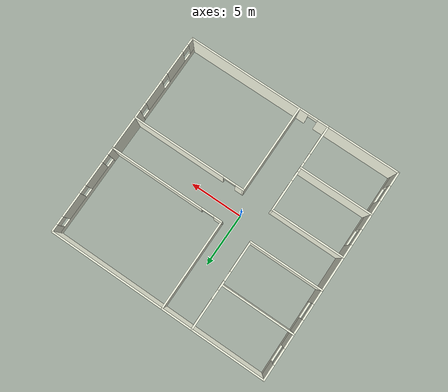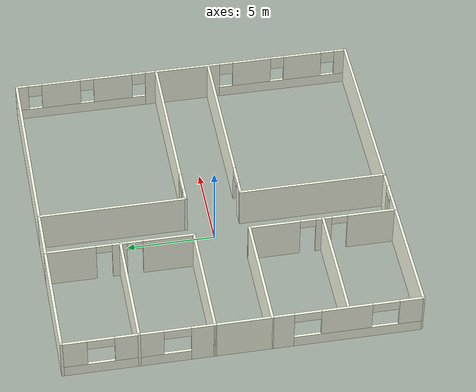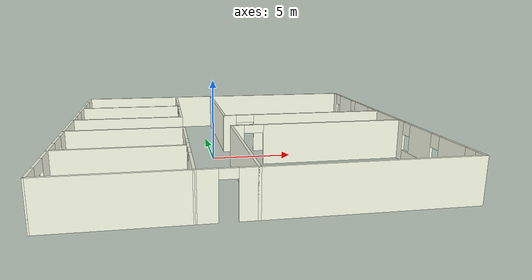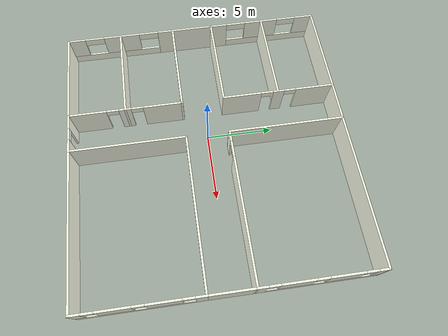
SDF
<?xml version='1.0'?>
<sdf version='1.6'>
  <model name='college'>
    <pose frame=''>1.48726 -0.092953 0 0 -0 0</pose>
    <link name='Wall_14'>
      <collision name='Wall_14_Collision'>
        <geometry>
          <box>
            <size>8.5 0.15 2.5</size>
          </box>
        </geometry>
        <pose frame=''>0 0 1.25 0 -0 0</pose>
      </collision>
      <visual name='Wall_14_Visual'>
        <pose frame=''>0 0 1.25 0 -0 0</pose>
        <geometry>
          <box>
            <size>8.5 0.15 2.5</size>
          </box>
        </geometry>
        <material>
          <script>
            <uri>file://media/materials/scripts/gazebo.material</uri>
            <name>Gazebo/Grey</name>
          </script>
          <ambient>0.988235 1 0.917647 1</ambient>
        </material>
        <meta>
          <layer>0</layer>
        </meta>
      </visual>
      <pose frame=''>-0.569753 5.74556 0 0 -0 1.5708</pose>
    </link>
    <link name='Wall_19'>
      <pose frame=''>-3.42964 5.74918 0 0 -0 1.5708</pose>
      <visual name='Wall_19_Visual_0'>
        <pose frame=''>-2.76957 0 1.25 0 -0 0</pose>
        <geometry>
          <box>
            <size>2.96087 0.15 2.5</size>
          </box>
        </geometry>
        <material>
          <script>
            <uri>file://media/materials/scripts/gazebo.material</uri>
            <name>Gazebo/Grey</name>
          </script>
          <ambient>0.988235 1 0.917647 1</ambient>
        </material>
        <meta>
          <layer>0</layer>
        </meta>
      </visual>
      <collision name='Wall_19_Collision_0'>
        <geometry>
          <box>
            <size>2.96087 0.15 2.5</size>
          </box>
        </geometry>
        <pose frame=''>-2.76957 0 1.25 0 -0 0</pose>
      </collision>
      <visual name='Wall_19_Visual_1'>
        <pose frame=''>0.027105 0 1.25 0 -0 0</pose>
        <geometry>
          <box>
            <size>0.832475 0.15 2.5</size>
          </box>
        </geometry>
        <material>
          <script>
            <uri>file://media/materials/scripts/gazebo.material</uri>
            <name>Gazebo/Grey</name>
          </script>
          <ambient>0.988235 1 0.917647 1</ambient>
        </material>
        <meta>
          <layer>0</layer>
        </meta>
      </visual>
      <collision name='Wall_19_Collision_1'>
        <geometry>
          <box>
            <size>0.832475 0.15 2.5</size>
          </box>
        </geometry>
        <pose frame=''>0.027105 0 1.25 0 -0 0</pose>
      </collision>
      <visual name='Wall_19_Visual_2'>
        <pose frame=''>2.79667 0 1.25 0 -0 0</pose>
        <geometry>
          <box>
            <size>2.90666 0.15 2.5</size>
          </box>
        </geometry>
        <material>
          <script>
            <uri>file://media/materials/scripts/gazebo.material</uri>
            <name>Gazebo/Grey</name>
          </script>
          <ambient>0.988235 1 0.917647 1</ambient>
        </material>
        <meta>
          <layer>0</layer>
        </meta>
      </visual>
      <collision name='Wall_19_Collision_2'>
        <geometry>
          <box>
            <size>2.90666 0.15 2.5</size>
          </box>
        </geometry>
        <pose frame=''>2.79667 0 1.25 0 -0 0</pose>
      </collision>
      <visual name='Wall_19_Visual_3'>
        <pose frame=''>-0.839132 0 2.25 0 -0 0</pose>
        <geometry>
          <box>
            <size>0.9 0.15 0.5</size>
          </box>
        </geometry>
        <material>
          <script>
            <uri>file://media/materials/scripts/gazebo.material</uri>
            <name>Gazebo/Grey</name>
          </script>
          <ambient>0.988235 1 0.917647 1</ambient>
        </material>
        <meta>
          <layer>0</layer>
        </meta>
      </visual>
      <collision name='Wall_19_Collision_3'>
        <geometry>
          <box>
            <size>0.9 0.15 0.5</size>
          </box>
        </geometry>
        <pose frame=''>-0.839132 0 2.25 0 -0 0</pose>
      </collision>
      <visual name='Wall_19_Visual_4'>
        <pose frame=''>0.893342 0 2.25 0 -0 0</pose>
        <geometry>
          <box>
            <size>0.9 0.15 0.5</size>
          </box>
        </geometry>
        <material>
          <script>
            <uri>file://media/materials/scripts/gazebo.material</uri>
            <name>Gazebo/Grey</name>
          </script>
          <ambient>0.988235 1 0.917647 1</ambient>
        </material>
        <meta>
          <layer>0</layer>
        </meta>
      </visual>
      <collision name='Wall_19_Collision_4'>
        <geometry>
          <box>
            <size>0.9 0.15 0.5</size>
          </box>
        </geometry>
        <pose frame=''>0.893342 0 2.25 0 -0 0</pose>
      </collision>
    </link>
    <link name='Wall_21'>
      <pose frame=''>4.85525 1.57056 0 0 -0 0</pose>
      <visual name='Wall_21_Visual_0'>
        <pose frame=''>-5.07887 0 1.25 0 -0 0</pose>
        <geometry>
          <box>
            <size>0.842258 0.15 2.5</size>
          </box>
        </geometry>
        <material>
          <script>
            <uri>file://media/materials/scripts/gazebo.material</uri>
            <name>Gazebo/Grey</name>
          </script>
          <ambient>0.988235 1 0.917647 1</ambient>
        </material>
        <meta>
          <layer>0</layer>
        </meta>
      </visual>
      <collision name='Wall_21_Collision_0'>
        <geometry>
          <box>
            <size>0.842258 0.15 2.5</size>
          </box>
        </geometry>
        <pose frame=''>-5.07887 0 1.25 0 -0 0</pose>
      </collision>
      <visual name='Wall_21_Visual_1'>
        <pose frame=''>1.02113 0 1.25 0 -0 0</pose>
        <geometry>
          <box>
            <size>8.95774 0.15 2.5</size>
          </box>
        </geometry>
        <material>
          <script>
            <uri>file://media/materials/scripts/gazebo.material</uri>
            <name>Gazebo/Grey</name>
          </script>
          <ambient>0.988235 1 0.917647 1</ambient>
        </material>
        <meta>
          <layer>0</layer>
        </meta>
      </visual>
      <collision name='Wall_21_Collision_1'>
        <geometry>
          <box>
            <size>8.95774 0.15 2.5</size>
          </box>
        </geometry>
        <pose frame=''>1.02113 0 1.25 0 -0 0</pose>
      </collision>
      <visual name='Wall_21_Visual_2'>
        <pose frame=''>-4.05774 0 2.25 0 -0 0</pose>
        <geometry>
          <box>
            <size>1.2 0.15 0.5</size>
          </box>
        </geometry>
        <material>
          <script>
            <uri>file://media/materials/scripts/gazebo.material</uri>
            <name>Gazebo/Grey</name>
          </script>
          <ambient>0.988235 1 0.917647 1</ambient>
        </material>
        <meta>
          <layer>0</layer>
        </meta>
      </visual>
      <collision name='Wall_21_Collision_2'>
        <geometry>
          <box>
            <size>1.2 0.15 0.5</size>
          </box>
        </geometry>
        <pose frame=''>-4.05774 0 2.25 0 -0 0</pose>
      </collision>
    </link>
    <link name='Wall_23'>
      <pose frame=''>4.84845 -1.5742 0 0 -0 0</pose>
      <visual name='Wall_23_Visual_0'>
        <pose frame=''>-5.07963 0 1.25 0 -0 0</pose>
        <geometry>
          <box>
            <size>0.84073 0.15 2.5</size>
          </box>
        </geometry>
        <material>
          <script>
            <uri>file://media/materials/scripts/gazebo.material</uri>
            <name>Gazebo/Grey</name>
          </script>
          <ambient>0.988235 1 0.917647 1</ambient>
        </material>
        <meta>
          <layer>0</layer>
        </meta>
      </visual>
      <collision name='Wall_23_Collision_0'>
        <geometry>
          <box>
            <size>0.84073 0.15 2.5</size>
          </box>
        </geometry>
        <pose frame=''>-5.07963 0 1.25 0 -0 0</pose>
      </collision>
      <visual name='Wall_23_Visual_1'>
        <pose frame=''>1.02036 0 1.25 0 -0 0</pose>
        <geometry>
          <box>
            <size>8.95927 0.15 2.5</size>
          </box>
        </geometry>
        <material>
          <script>
            <uri>file://media/materials/scripts/gazebo.material</uri>
            <name>Gazebo/Grey</name>
          </script>
          <ambient>0.988235 1 0.917647 1</ambient>
        </material>
        <meta>
          <layer>0</layer>
        </meta>
      </visual>
      <collision name='Wall_23_Collision_1'>
        <geometry>
          <box>
            <size>8.95927 0.15 2.5</size>
          </box>
        </geometry>
        <pose frame=''>1.02036 0 1.25 0 -0 0</pose>
      </collision>
      <visual name='Wall_23_Visual_2'>
        <pose frame=''>-4.05927 0 2.25 0 -0 0</pose>
        <geometry>
          <box>
            <size>1.2 0.15 0.5</size>
          </box>
        </geometry>
        <material>
          <script>
            <uri>file://media/materials/scripts/gazebo.material</uri>
            <name>Gazebo/Grey</name>
          </script>
          <ambient>0.988235 1 0.917647 1</ambient>
        </material>
        <meta>
          <layer>0</layer>
        </meta>
      </visual>
      <collision name='Wall_23_Collision_2'>
        <geometry>
          <box>
            <size>1.2 0.15 0.5</size>
          </box>
        </geometry>
        <pose frame=''>-4.05927 0 2.25 0 -0 0</pose>
      </collision>
    </link>
    <link name='Wall_24'>
      <pose frame=''>10.2735 -5.7492 0 0 0 -1.5708</pose>
      <visual name='Wall_24_Visual_0'>
        <pose frame=''>-3.87076 0 1.25 0 -0 0</pose>
        <geometry>
          <box>
            <size>0.758485 0.15 2.5</size>
          </box>
        </geometry>
        <material>
          <script>
            <uri>file://media/materials/scripts/gazebo.material</uri>
            <name>Gazebo/Grey</name>
          </script>
          <ambient>0.988235 1 0.917647 1</ambient>
        </material>
        <meta>
          <layer>0</layer>
        </meta>
      </visual>
      <collision name='Wall_24_Collision_0'>
        <geometry>
          <box>
            <size>0.758485 0.15 2.5</size>
          </box>
        </geometry>
        <pose frame=''>-3.87076 0 1.25 0 -0 0</pose>
      </collision>
      <visual name='Wall_24_Visual_1'>
        <pose frame=''>0.379243 0 0.35 0 -0 0</pose>
        <geometry>
          <box>
            <size>7.74151 0.15 0.7</size>
          </box>
        </geometry>
        <material>
          <script>
            <uri>file://media/materials/scripts/gazebo.material</uri>
            <name>Gazebo/Grey</name>
          </script>
          <ambient>0.988235 1 0.917647 1</ambient>
        </material>
        <meta>
          <layer>0</layer>
        </meta>
      </visual>
      <collision name='Wall_24_Collision_1'>
        <geometry>
          <box>
            <size>7.74151 0.15 0.7</size>
          </box>
        </geometry>
        <pose frame=''>0.379243 0 0.35 0 -0 0</pose>
      </collision>
      <visual name='Wall_24_Visual_2'>
        <pose frame=''>-1.5349 0 1.6 0 -0 0</pose>
        <geometry>
          <box>
            <size>2.31323 0.15 1.8</size>
          </box>
        </geometry>
        <material>
          <script>
            <uri>file://media/materials/scripts/gazebo.material</uri>
            <name>Gazebo/Grey</name>
          </script>
          <ambient>0.988235 1 0.917647 1</ambient>
        </material>
        <meta>
          <layer>0</layer>
        </meta>
      </visual>
      <collision name='Wall_24_Collision_2'>
        <geometry>
          <box>
            <size>2.31323 0.15 1.8</size>
          </box>
        </geometry>
        <pose frame=''>-1.5349 0 1.6 0 -0 0</pose>
      </collision>
      <visual name='Wall_24_Visual_3'>
        <pose frame=''>1.56248 0 1.6 0 -0 0</pose>
        <geometry>
          <box>
            <size>2.28153 0.15 1.8</size>
          </box>
        </geometry>
        <material>
          <script>
            <uri>file://media/materials/scripts/gazebo.material</uri>
            <name>Gazebo/Grey</name>
          </script>
          <ambient>0.988235 1 0.917647 1</ambient>
        </material>
        <meta>
          <layer>0</layer>
        </meta>
      </visual>
      <collision name='Wall_24_Collision_3'>
        <geometry>
          <box>
            <size>2.28153 0.15 1.8</size>
          </box>
        </geometry>
        <pose frame=''>1.56248 0 1.6 0 -0 0</pose>
      </collision>
      <visual name='Wall_24_Visual_4'>
        <pose frame=''>3.87662 0 1.6 0 -0 0</pose>
        <geometry>
          <box>
            <size>0.746754 0.15 1.8</size>
          </box>
        </geometry>
        <material>
          <script>
            <uri>file://media/materials/scripts/gazebo.material</uri>
            <name>Gazebo/Grey</name>
          </script>
          <ambient>0.988235 1 0.917647 1</ambient>
        </material>
        <meta>
          <layer>0</layer>
        </meta>
      </visual>
      <collision name='Wall_24_Collision_4'>
        <geometry>
          <box>
            <size>0.746754 0.15 1.8</size>
          </box>
        </geometry>
        <pose frame=''>3.87662 0 1.6 0 -0 0</pose>
      </collision>
      <visual name='Wall_24_Visual_5'>
        <pose frame=''>-3.09151 0 2.1 0 -0 0</pose>
        <geometry>
          <box>
            <size>0.8 0.15 0.8</size>
          </box>
        </geometry>
        <material>
          <script>
            <uri>file://media/materials/scripts/gazebo.material</uri>
            <name>Gazebo/Grey</name>
          </script>
          <ambient>0.988235 1 0.917647 1</ambient>
        </material>
        <meta>
          <layer>0</layer>
        </meta>
      </visual>
      <collision name='Wall_24_Collision_5'>
        <geometry>
          <box>
            <size>0.8 0.15 0.8</size>
          </box>
        </geometry>
        <pose frame=''>-3.09151 0 2.1 0 -0 0</pose>
      </collision>
      <visual name='Wall_24_Visual_6'>
        <pose frame=''>0.021717 0 2.1 0 -0 0</pose>
        <geometry>
          <box>
            <size>0.8 0.15 0.8</size>
          </box>
        </geometry>
        <material>
          <script>
            <uri>file://media/materials/scripts/gazebo.material</uri>
            <name>Gazebo/Grey</name>
          </script>
          <ambient>0.988235 1 0.917647 1</ambient>
        </material>
        <meta>
          <layer>0</layer>
        </meta>
      </visual>
      <collision name='Wall_24_Collision_6'>
        <geometry>
          <box>
            <size>0.8 0.15 0.8</size>
          </box>
        </geometry>
        <pose frame=''>0.021717 0 2.1 0 -0 0</pose>
      </collision>
      <visual name='Wall_24_Visual_7'>
        <pose frame=''>3.10325 0 2.1 0 -0 0</pose>
        <geometry>
          <box>
            <size>0.8 0.15 0.8</size>
          </box>
        </geometry>
        <material>
          <script>
            <uri>file://media/materials/scripts/gazebo.material</uri>
            <name>Gazebo/Grey</name>
          </script>
          <ambient>0.988235 1 0.917647 1</ambient>
        </material>
        <meta>
          <layer>0</layer>
        </meta>
      </visual>
      <collision name='Wall_24_Collision_7'>
        <geometry>
          <box>
            <size>0.8 0.15 0.8</size>
          </box>
        </geometry>
        <pose frame=''>3.10325 0 2.1 0 -0 0</pose>
      </collision>
    </link>
    <link name='Wall_25'>
      <collision name='Wall_25_Collision'>
        <geometry>
          <box>
            <size>11 0.15 2.5</size>
          </box>
        </geometry>
        <pose frame=''>0 0 1.25 0 -0 0</pose>
      </collision>
      <visual name='Wall_25_Visual'>
        <pose frame=''>0 0 1.25 0 -0 0</pose>
        <geometry>
          <box>
            <size>11 0.15 2.5</size>
          </box>
        </geometry>
        <material>
          <script>
            <uri>file://media/materials/scripts/gazebo.material</uri>
            <name>Gazebo/Grey</name>
          </script>
          <ambient>0.988235 1 0.917647 1</ambient>
        </material>
        <meta>
          <layer>0</layer>
        </meta>
      </visual>
      <pose frame=''>4.84845 -9.9242 0 0 -0 3.14159</pose>
    </link>
    <link name='Wall_27'>
      <pose frame=''>10.2802 5.74556 0 0 -0 1.5708</pose>
      <visual name='Wall_27_Visual_0'>
        <pose frame=''>-3.87825 0 1.25 0 -0 0</pose>
        <geometry>
          <box>
            <size>0.743501 0.15 2.5</size>
          </box>
        </geometry>
        <material>
          <script>
            <uri>file://media/materials/scripts/gazebo.material</uri>
            <name>Gazebo/Grey</name>
          </script>
          <ambient>0.988235 1 0.917647 1</ambient>
        </material>
        <meta>
          <layer>0</layer>
        </meta>
      </visual>
      <collision name='Wall_27_Collision_0'>
        <geometry>
          <box>
            <size>0.743501 0.15 2.5</size>
          </box>
        </geometry>
        <pose frame=''>-3.87825 0 1.25 0 -0 0</pose>
      </collision>
      <visual name='Wall_27_Visual_1'>
        <pose frame=''>0.37175 0 0.35 0 -0 0</pose>
        <geometry>
          <box>
            <size>7.7565 0.15 0.7</size>
          </box>
        </geometry>
        <material>
          <script>
            <uri>file://media/materials/scripts/gazebo.material</uri>
            <name>Gazebo/Grey</name>
          </script>
          <ambient>0.988235 1 0.917647 1</ambient>
        </material>
        <meta>
          <layer>0</layer>
        </meta>
      </visual>
      <collision name='Wall_27_Collision_1'>
        <geometry>
          <box>
            <size>7.7565 0.15 0.7</size>
          </box>
        </geometry>
        <pose frame=''>0.37175 0 0.35 0 -0 0</pose>
      </collision>
      <visual name='Wall_27_Visual_2'>
        <pose frame=''>-1.55549 0 1.6 0 -0 0</pose>
        <geometry>
          <box>
            <size>2.30202 0.15 1.8</size>
          </box>
        </geometry>
        <material>
          <script>
            <uri>file://media/materials/scripts/gazebo.material</uri>
            <name>Gazebo/Grey</name>
          </script>
          <ambient>0.988235 1 0.917647 1</ambient>
        </material>
        <meta>
          <layer>0</layer>
        </meta>
      </visual>
      <collision name='Wall_27_Collision_2'>
        <geometry>
          <box>
            <size>2.30202 0.15 1.8</size>
          </box>
        </geometry>
        <pose frame=''>-1.55549 0 1.6 0 -0 0</pose>
      </collision>
      <visual name='Wall_27_Visual_3'>
        <pose frame=''>1.54849 0 1.6 0 -0 0</pose>
        <geometry>
          <box>
            <size>2.30593 0.15 1.8</size>
          </box>
        </geometry>
        <material>
          <script>
            <uri>file://media/materials/scripts/gazebo.material</uri>
            <name>Gazebo/Grey</name>
          </script>
          <ambient>0.988235 1 0.917647 1</ambient>
        </material>
        <meta>
          <layer>0</layer>
        </meta>
      </visual>
      <collision name='Wall_27_Collision_3'>
        <geometry>
          <box>
            <size>2.30593 0.15 1.8</size>
          </box>
        </geometry>
        <pose frame=''>1.54849 0 1.6 0 -0 0</pose>
      </collision>
      <visual name='Wall_27_Visual_4'>
        <pose frame=''>3.87573 0 1.6 0 -0 0</pose>
        <geometry>
          <box>
            <size>0.74855 0.15 1.8</size>
          </box>
        </geometry>
        <material>
          <script>
            <uri>file://media/materials/scripts/gazebo.material</uri>
            <name>Gazebo/Grey</name>
          </script>
          <ambient>0.988235 1 0.917647 1</ambient>
        </material>
        <meta>
          <layer>0</layer>
        </meta>
      </visual>
      <collision name='Wall_27_Collision_4'>
        <geometry>
          <box>
            <size>0.74855 0.15 1.8</size>
          </box>
        </geometry>
        <pose frame=''>3.87573 0 1.6 0 -0 0</pose>
      </collision>
      <visual name='Wall_27_Visual_5'>
        <pose frame=''>-3.1065 0 2.1 0 -0 0</pose>
        <geometry>
          <box>
            <size>0.8 0.15 0.8</size>
          </box>
        </geometry>
        <material>
          <script>
            <uri>file://media/materials/scripts/gazebo.material</uri>
            <name>Gazebo/Grey</name>
          </script>
          <ambient>0.988235 1 0.917647 1</ambient>
        </material>
        <meta>
          <layer>0</layer>
        </meta>
      </visual>
      <collision name='Wall_27_Collision_5'>
        <geometry>
          <box>
            <size>0.8 0.15 0.8</size>
          </box>
        </geometry>
        <pose frame=''>-3.1065 0 2.1 0 -0 0</pose>
      </collision>
      <visual name='Wall_27_Visual_6'>
        <pose frame=''>-0.004479 0 2.1 0 -0 0</pose>
        <geometry>
          <box>
            <size>0.8 0.15 0.8</size>
          </box>
        </geometry>
        <material>
          <script>
            <uri>file://media/materials/scripts/gazebo.material</uri>
            <name>Gazebo/Grey</name>
          </script>
          <ambient>0.988235 1 0.917647 1</ambient>
        </material>
        <meta>
          <layer>0</layer>
        </meta>
      </visual>
      <collision name='Wall_27_Collision_6'>
        <geometry>
          <box>
            <size>0.8 0.15 0.8</size>
          </box>
        </geometry>
        <pose frame=''>-0.004479 0 2.1 0 -0 0</pose>
      </collision>
      <visual name='Wall_27_Visual_7'>
        <pose frame=''>3.10145 0 2.1 0 -0 0</pose>
        <geometry>
          <box>
            <size>0.8 0.15 0.8</size>
          </box>
        </geometry>
        <material>
          <script>
            <uri>file://media/materials/scripts/gazebo.material</uri>
            <name>Gazebo/Grey</name>
          </script>
          <ambient>0.988235 1 0.917647 1</ambient>
        </material>
        <meta>
          <layer>0</layer>
        </meta>
      </visual>
      <collision name='Wall_27_Collision_7'>
        <geometry>
          <box>
            <size>0.8 0.15 0.8</size>
          </box>
        </geometry>
        <pose frame=''>3.10145 0 2.1 0 -0 0</pose>
      </collision>
    </link>
    <link name='Wall_28'>
      <collision name='Wall_28_Collision'>
        <geometry>
          <box>
            <size>11 0.15 2.5</size>
          </box>
        </geometry>
        <pose frame=''>0 0 1.25 0 -0 0</pose>
      </collision>
      <visual name='Wall_28_Visual'>
        <pose frame=''>0 0 1.25 0 -0 0</pose>
        <geometry>
          <box>
            <size>11 0.15 2.5</size>
          </box>
        </geometry>
        <material>
          <script>
            <uri>file://media/materials/scripts/gazebo.material</uri>
            <name>Gazebo/Grey</name>
          </script>
          <ambient>0.988235 1 0.917647 1</ambient>
        </material>
        <meta>
          <layer>0</layer>
        </meta>
      </visual>
      <pose frame=''>4.85525 9.92056 0 0 -0 3.14159</pose>
    </link>
    <link name='Wall_32'>
      <pose frame=''>-10.2765 -5.74165 0 0 0 -1.5708</pose>
      <visual name='Wall_32_Visual_0'>
        <pose frame=''>-3.60322 0 1.25 0 -0 0</pose>
        <geometry>
          <box>
            <size>1.29356 0.15 2.5</size>
          </box>
        </geometry>
        <material>
          <script>
            <uri>file://media/materials/scripts/gazebo.material</uri>
            <name>Gazebo/Grey</name>
          </script>
          <ambient>0.988235 1 0.917647 1</ambient>
        </material>
        <meta>
          <layer>0</layer>
        </meta>
      </visual>
      <collision name='Wall_32_Collision_0'>
        <geometry>
          <box>
            <size>1.29356 0.15 2.5</size>
          </box>
        </geometry>
        <pose frame=''>-3.60322 0 1.25 0 -0 0</pose>
      </collision>
      <visual name='Wall_32_Visual_1'>
        <pose frame=''>0.64678 0 0.35 0 -0 0</pose>
        <geometry>
          <box>
            <size>7.20644 0.15 0.7</size>
          </box>
        </geometry>
        <material>
          <script>
            <uri>file://media/materials/scripts/gazebo.material</uri>
            <name>Gazebo/Grey</name>
          </script>
          <ambient>0.988235 1 0.917647 1</ambient>
        </material>
        <meta>
          <layer>0</layer>
        </meta>
      </visual>
      <collision name='Wall_32_Collision_1'>
        <geometry>
          <box>
            <size>7.20644 0.15 0.7</size>
          </box>
        </geometry>
        <pose frame=''>0.64678 0 0.35 0 -0 0</pose>
      </collision>
      <visual name='Wall_32_Visual_2'>
        <pose frame=''>-0.045598 0 1.6 0 -0 0</pose>
        <geometry>
          <box>
            <size>2.82168 0.15 1.8</size>
          </box>
        </geometry>
        <material>
          <script>
            <uri>file://media/materials/scripts/gazebo.material</uri>
            <name>Gazebo/Grey</name>
          </script>
          <ambient>0.988235 1 0.917647 1</ambient>
        </material>
        <meta>
          <layer>0</layer>
        </meta>
      </visual>
      <collision name='Wall_32_Collision_2'>
        <geometry>
          <box>
            <size>2.82168 0.15 1.8</size>
          </box>
        </geometry>
        <pose frame=''>-0.045598 0 1.6 0 -0 0</pose>
      </collision>
      <visual name='Wall_32_Visual_3'>
        <pose frame=''>3.55762 0 1.6 0 -0 0</pose>
        <geometry>
          <box>
            <size>1.38476 0.15 1.8</size>
          </box>
        </geometry>
        <material>
          <script>
            <uri>file://media/materials/scripts/gazebo.material</uri>
            <name>Gazebo/Grey</name>
          </script>
          <ambient>0.988235 1 0.917647 1</ambient>
        </material>
        <meta>
          <layer>0</layer>
        </meta>
      </visual>
      <collision name='Wall_32_Collision_3'>
        <geometry>
          <box>
            <size>1.38476 0.15 1.8</size>
          </box>
        </geometry>
        <pose frame=''>3.55762 0 1.6 0 -0 0</pose>
      </collision>
      <visual name='Wall_32_Visual_4'>
        <pose frame=''>-2.20644 0 2.2 0 -0 0</pose>
        <geometry>
          <box>
            <size>1.5 0.15 0.6</size>
          </box>
        </geometry>
        <material>
          <script>
            <uri>file://media/materials/scripts/gazebo.material</uri>
            <name>Gazebo/Grey</name>
          </script>
          <ambient>0.988235 1 0.917647 1</ambient>
        </material>
        <meta>
          <layer>0</layer>
        </meta>
      </visual>
      <collision name='Wall_32_Collision_4'>
        <geometry>
          <box>
            <size>1.5 0.15 0.6</size>
          </box>
        </geometry>
        <pose frame=''>-2.20644 0 2.2 0 -0 0</pose>
      </collision>
      <visual name='Wall_32_Visual_5'>
        <pose frame=''>2.11524 0 2.2 0 -0 0</pose>
        <geometry>
          <box>
            <size>1.5 0.15 0.6</size>
          </box>
        </geometry>
        <material>
          <script>
            <uri>file://media/materials/scripts/gazebo.material</uri>
            <name>Gazebo/Grey</name>
          </script>
          <ambient>0.988235 1 0.917647 1</ambient>
        </material>
        <meta>
          <layer>0</layer>
        </meta>
      </visual>
      <collision name='Wall_32_Collision_5'>
        <geometry>
          <box>
            <size>1.5 0.15 0.6</size>
          </box>
        </geometry>
        <pose frame=''>2.11524 0 2.2 0 -0 0</pose>
      </collision>
    </link>
    <link name='Wall_40'>
      <collision name='Wall_40_Collision'>
        <geometry>
          <box>
            <size>7 0.15 2.5</size>
          </box>
        </geometry>
        <pose frame=''>0 0 1.25 0 -0 0</pose>
      </collision>
      <visual name='Wall_40_Visual'>
        <pose frame=''>0 0 1.25 0 -0 0</pose>
        <geometry>
          <box>
            <size>7 0.15 2.5</size>
          </box>
        </geometry>
        <material>
          <script>
            <uri>file://media/materials/scripts/gazebo.material</uri>
            <name>Gazebo/Grey</name>
          </script>
          <ambient>0.988235 1 0.917647 1</ambient>
        </material>
        <meta>
          <layer>0</layer>
        </meta>
      </visual>
      <pose frame=''>-6.84998 -5.77055 0 0 -0 3.14159</pose>
    </link>
    <link name='Wall_42'>
      <collision name='Wall_42_Collision'>
        <geometry>
          <box>
            <size>7 0.15 2.5</size>
          </box>
        </geometry>
        <pose frame=''>0 0 1.25 0 -0 0</pose>
      </collision>
      <visual name='Wall_42_Visual'>
        <pose frame=''>0 0 1.25 0 -0 0</pose>
        <geometry>
          <box>
            <size>7 0.15 2.5</size>
          </box>
        </geometry>
        <material>
          <script>
            <uri>file://media/materials/scripts/gazebo.material</uri>
            <name>Gazebo/Grey</name>
          </script>
          <ambient>0.988235 1 0.917647 1</ambient>
        </material>
        <meta>
          <layer>0</layer>
        </meta>
      </visual>
      <pose frame=''>-6.85464 1.57418 0 0 -0 3.14159</pose>
    </link>
    <link name='Wall_43'>
      <pose frame=''>-10.2796 5.74918 0 0 -0 1.5708</pose>
      <visual name='Wall_43_Visual_0'>
        <pose frame=''>-3.56529 0 1.25 0 -0 0</pose>
        <geometry>
          <box>
            <size>1.36942 0.15 2.5</size>
          </box>
        </geometry>
        <material>
          <script>
            <uri>file://media/materials/scripts/gazebo.material</uri>
            <name>Gazebo/Grey</name>
          </script>
          <ambient>0.988235 1 0.917647 1</ambient>
        </material>
        <meta>
          <layer>0</layer>
        </meta>
      </visual>
      <collision name='Wall_43_Collision_0'>
        <geometry>
          <box>
            <size>1.36942 0.15 2.5</size>
          </box>
        </geometry>
        <pose frame=''>-3.56529 0 1.25 0 -0 0</pose>
      </collision>
      <visual name='Wall_43_Visual_1'>
        <pose frame=''>0.684711 0 0.35 0 -0 0</pose>
        <geometry>
          <box>
            <size>7.13058 0.15 0.7</size>
          </box>
        </geometry>
        <material>
          <script>
            <uri>file://media/materials/scripts/gazebo.material</uri>
            <name>Gazebo/Grey</name>
          </script>
          <ambient>0.988235 1 0.917647 1</ambient>
        </material>
        <meta>
          <layer>0</layer>
        </meta>
      </visual>
      <collision name='Wall_43_Collision_1'>
        <geometry>
          <box>
            <size>7.13058 0.15 0.7</size>
          </box>
        </geometry>
        <pose frame=''>0.684711 0 0.35 0 -0 0</pose>
      </collision>
      <visual name='Wall_43_Visual_2'>
        <pose frame=''>-0.04698 0 1.6 0 -0 0</pose>
        <geometry>
          <box>
            <size>2.6672 0.15 1.8</size>
          </box>
        </geometry>
        <material>
          <script>
            <uri>file://media/materials/scripts/gazebo.material</uri>
            <name>Gazebo/Grey</name>
          </script>
          <ambient>0.988235 1 0.917647 1</ambient>
        </material>
        <meta>
          <layer>0</layer>
        </meta>
      </visual>
      <collision name='Wall_43_Collision_2'>
        <geometry>
          <box>
            <size>2.6672 0.15 1.8</size>
          </box>
        </geometry>
        <pose frame=''>-0.04698 0 1.6 0 -0 0</pose>
      </collision>
      <visual name='Wall_43_Visual_3'>
        <pose frame=''>3.51831 0 1.6 0 -0 0</pose>
        <geometry>
          <box>
            <size>1.46338 0.15 1.8</size>
          </box>
        </geometry>
        <material>
          <script>
            <uri>file://media/materials/scripts/gazebo.material</uri>
            <name>Gazebo/Grey</name>
          </script>
          <ambient>0.988235 1 0.917647 1</ambient>
        </material>
        <meta>
          <layer>0</layer>
        </meta>
      </visual>
      <collision name='Wall_43_Collision_3'>
        <geometry>
          <box>
            <size>1.46338 0.15 1.8</size>
          </box>
        </geometry>
        <pose frame=''>3.51831 0 1.6 0 -0 0</pose>
      </collision>
      <visual name='Wall_43_Visual_4'>
        <pose frame=''>-2.13058 0 2.2 0 -0 0</pose>
        <geometry>
          <box>
            <size>1.5 0.15 0.6</size>
          </box>
        </geometry>
        <material>
          <script>
            <uri>file://media/materials/scripts/gazebo.material</uri>
            <name>Gazebo/Grey</name>
          </script>
          <ambient>0.988235 1 0.917647 1</ambient>
        </material>
        <meta>
          <layer>0</layer>
        </meta>
      </visual>
      <collision name='Wall_43_Collision_4'>
        <geometry>
          <box>
            <size>1.5 0.15 0.6</size>
          </box>
        </geometry>
        <pose frame=''>-2.13058 0 2.2 0 -0 0</pose>
      </collision>
      <visual name='Wall_43_Visual_5'>
        <pose frame=''>2.03662 0 2.2 0 -0 0</pose>
        <geometry>
          <box>
            <size>1.5 0.15 0.6</size>
          </box>
        </geometry>
        <material>
          <script>
            <uri>file://media/materials/scripts/gazebo.material</uri>
            <name>Gazebo/Grey</name>
          </script>
          <ambient>0.988235 1 0.917647 1</ambient>
        </material>
        <meta>
          <layer>0</layer>
        </meta>
      </visual>
      <collision name='Wall_43_Collision_5'>
        <geometry>
          <box>
            <size>1.5 0.15 0.6</size>
          </box>
        </geometry>
        <pose frame=''>2.03662 0 2.2 0 -0 0</pose>
      </collision>
    </link>
    <link name='Wall_45'>
      <collision name='Wall_45_Collision'>
        <geometry>
          <box>
            <size>7 0.15 2.5</size>
          </box>
        </geometry>
        <pose frame=''>0 0 1.25 0 -0 0</pose>
      </collision>
      <visual name='Wall_45_Visual'>
        <pose frame=''>0 0 1.25 0 -0 0</pose>
        <geometry>
          <box>
            <size>7 0.15 2.5</size>
          </box>
        </geometry>
        <material>
          <script>
            <uri>file://media/materials/scripts/gazebo.material</uri>
            <name>Gazebo/Grey</name>
          </script>
          <ambient>0.988235 1 0.917647 1</ambient>
        </material>
        <meta>
          <layer>0</layer>
        </meta>
      </visual>
      <pose frame=''>-6.85464 9.92418 0 0 -0 0</pose>
    </link>
    <link name='Wall_48'>
      <collision name='Wall_48_Collision'>
        <geometry>
          <box>
            <size>7 0.15 2.5</size>
          </box>
        </geometry>
        <pose frame=''>0 0 1.25 0 -0 0</pose>
      </collision>
      <visual name='Wall_48_Visual'>
        <pose frame=''>0 0 1.25 0 -0 0</pose>
        <geometry>
          <box>
            <size>7 0.15 2.5</size>
          </box>
        </geometry>
        <material>
          <script>
            <uri>file://media/materials/scripts/gazebo.material</uri>
            <name>Gazebo/Grey</name>
          </script>
          <ambient>0.988235 1 0.917647 1</ambient>
        </material>
        <meta>
          <layer>0</layer>
        </meta>
      </visual>
      <pose frame=''>-6.85154 -9.92042 0 0 0 -0.001102</pose>
    </link>
    <link name='Wall_50'>
      <collision name='Wall_50_Collision'>
        <geometry>
          <box>
            <size>7.00001 0.15 2.5</size>
          </box>
        </geometry>
        <pose frame=''>0 0 1.25 0 -0 0</pose>
      </collision>
      <visual name='Wall_50_Visual'>
        <pose frame=''>0 0 1.25 0 -0 0</pose>
        <geometry>
          <box>
            <size>7.00001 0.15 2.5</size>
          </box>
        </geometry>
        <material>
          <script>
            <uri>file://media/materials/scripts/gazebo.material</uri>
            <name>Gazebo/Grey</name>
          </script>
          <ambient>0.988235 1 0.917647 1</ambient>
        </material>
        <meta>
          <layer>0</layer>
        </meta>
      </visual>
      <pose frame=''>-6.85154 -1.56665 0 0 -0 0</pose>
    </link>
    <link name='Wall_6'>
      <pose frame=''>-3.42655 -5.74045 0 0 -0 1.5708</pose>
      <visual name='Wall_6_Visual_0'>
        <pose frame=''>-2.83912 0 1.25 0 -0 0</pose>
        <geometry>
          <box>
            <size>2.83925 0.15 2.5</size>
          </box>
        </geometry>
        <material>
          <script>
            <uri>file://media/materials/scripts/gazebo.material</uri>
            <name>Gazebo/Grey</name>
          </script>
          <ambient>0.988235 1 0.917647 1</ambient>
        </material>
        <meta>
          <layer>0</layer>
        </meta>
      </visual>
      <collision name='Wall_6_Collision_0'>
        <geometry>
          <box>
            <size>2.83925 0.15 2.5</size>
          </box>
        </geometry>
        <pose frame=''>-2.83912 0 1.25 0 -0 0</pose>
      </collision>
      <visual name='Wall_6_Visual_1'>
        <pose frame=''>-0.069089 0 1.25 0 -0 0</pose>
        <geometry>
          <box>
            <size>0.900821 0.15 2.5</size>
          </box>
        </geometry>
        <material>
          <script>
            <uri>file://media/materials/scripts/gazebo.material</uri>
            <name>Gazebo/Grey</name>
          </script>
          <ambient>0.988235 1 0.917647 1</ambient>
        </material>
        <meta>
          <layer>0</layer>
        </meta>
      </visual>
      <collision name='Wall_6_Collision_1'>
        <geometry>
          <box>
            <size>0.900821 0.15 2.5</size>
          </box>
        </geometry>
        <pose frame=''>-0.069089 0 1.25 0 -0 0</pose>
      </collision>
      <visual name='Wall_6_Visual_2'>
        <pose frame=''>2.77003 0 1.25 0 -0 0</pose>
        <geometry>
          <box>
            <size>2.97742 0.15 2.5</size>
          </box>
        </geometry>
        <material>
          <script>
            <uri>file://media/materials/scripts/gazebo.material</uri>
            <name>Gazebo/Grey</name>
          </script>
          <ambient>0.988235 1 0.917647 1</ambient>
        </material>
        <meta>
          <layer>0</layer>
        </meta>
      </visual>
      <collision name='Wall_6_Collision_2'>
        <geometry>
          <box>
            <size>2.97742 0.15 2.5</size>
          </box>
        </geometry>
        <pose frame=''>2.77003 0 1.25 0 -0 0</pose>
      </collision>
      <visual name='Wall_6_Visual_3'>
        <pose frame=''>-0.9695 0 2.25 0 -0 0</pose>
        <geometry>
          <box>
            <size>0.9 0.15 0.5</size>
          </box>
        </geometry>
        <material>
          <script>
            <uri>file://media/materials/scripts/gazebo.material</uri>
            <name>Gazebo/Grey</name>
          </script>
          <ambient>0.988235 1 0.917647 1</ambient>
        </material>
        <meta>
          <layer>0</layer>
        </meta>
      </visual>
      <collision name='Wall_6_Collision_3'>
        <geometry>
          <box>
            <size>0.9 0.15 0.5</size>
          </box>
        </geometry>
        <pose frame=''>-0.9695 0 2.25 0 -0 0</pose>
      </collision>
      <visual name='Wall_6_Visual_4'>
        <pose frame=''>0.831322 0 2.25 0 -0 0</pose>
        <geometry>
          <box>
            <size>0.9 0.15 0.5</size>
          </box>
        </geometry>
        <material>
          <script>
            <uri>file://media/materials/scripts/gazebo.material</uri>
            <name>Gazebo/Grey</name>
          </script>
          <ambient>0.988235 1 0.917647 1</ambient>
        </material>
        <meta>
          <layer>0</layer>
        </meta>
      </visual>
      <collision name='Wall_6_Collision_4'>
        <geometry>
          <box>
            <size>0.9 0.15 0.5</size>
          </box>
        </geometry>
        <pose frame=''>0.831322 0 2.25 0 -0 0</pose>
      </collision>
    </link>
    <link name='Wall_65'>
      <collision name='Wall_65_Collision'>
        <geometry>
          <box>
            <size>7 0.15 2.5</size>
          </box>
        </geometry>
        <pose frame=''>0 0 1.25 0 -0 0</pose>
      </collision>
      <visual name='Wall_65_Visual'>
        <pose frame=''>0 0 1.25 0 -0 0</pose>
        <geometry>
          <box>
            <size>7 0.15 2.5</size>
          </box>
        </geometry>
        <material>
          <script>
            <uri>file://media/materials/scripts/gazebo.material</uri>
            <name>Gazebo/Grey</name>
          </script>
          <ambient>0.988235 1 0.917647 1</ambient>
        </material>
        <meta>
          <layer>0</layer>
        </meta>
      </visual>
      <pose frame=''>-6.85541 5.71678 0 0 -0 3.14159</pose>
    </link>
    <link name='Wall_67'>
      <pose frame=''>-2.00155 -9.9242 0 0 -0 0</pose>
      <visual name='Wall_67_Visual_0'>
        <pose frame=''>-0.947932 0 1.25 0 -0 0</pose>
        <geometry>
          <box>
            <size>1.10414 0.15 2.5</size>
          </box>
        </geometry>
        <material>
          <script>
            <uri>file://media/materials/scripts/gazebo.material</uri>
            <name>Gazebo/Grey</name>
          </script>
          <ambient>0.988235 1 0.917647 1</ambient>
        </material>
        <meta>
          <layer>0</layer>
        </meta>
      </visual>
      <collision name='Wall_67_Collision_0'>
        <geometry>
          <box>
            <size>1.10414 0.15 2.5</size>
          </box>
        </geometry>
        <pose frame=''>-0.947932 0 1.25 0 -0 0</pose>
      </collision>
      <visual name='Wall_67_Visual_1'>
        <pose frame=''>1.00207 0 1.25 0 -0 0</pose>
        <geometry>
          <box>
            <size>0.995863 0.15 2.5</size>
          </box>
        </geometry>
        <material>
          <script>
            <uri>file://media/materials/scripts/gazebo.material</uri>
            <name>Gazebo/Grey</name>
          </script>
          <ambient>0.988235 1 0.917647 1</ambient>
        </material>
        <meta>
          <layer>0</layer>
        </meta>
      </visual>
      <collision name='Wall_67_Collision_1'>
        <geometry>
          <box>
            <size>0.995863 0.15 2.5</size>
          </box>
        </geometry>
        <pose frame=''>1.00207 0 1.25 0 -0 0</pose>
      </collision>
      <visual name='Wall_67_Visual_2'>
        <pose frame=''>0.054137 0 2.25 0 -0 0</pose>
        <geometry>
          <box>
            <size>0.9 0.15 0.5</size>
          </box>
        </geometry>
        <material>
          <script>
            <uri>file://media/materials/scripts/gazebo.material</uri>
            <name>Gazebo/Grey</name>
          </script>
          <ambient>0.988235 1 0.917647 1</ambient>
        </material>
        <meta>
          <layer>0</layer>
        </meta>
      </visual>
      <collision name='Wall_67_Collision_2'>
        <geometry>
          <box>
            <size>0.9 0.15 0.5</size>
          </box>
        </geometry>
        <pose frame=''>0.054137 0 2.25 0 -0 0</pose>
      </collision>
    </link>
    <link name='Wall_69'>
      <collision name='Wall_69_Collision'>
        <geometry>
          <box>
            <size>3.29084 0.15 2.5</size>
          </box>
        </geometry>
        <pose frame=''>0 0 1.25 0 -0 0</pose>
      </collision>
      <visual name='Wall_69_Visual'>
        <pose frame=''>0 0 1.25 0 -0 0</pose>
        <geometry>
          <box>
            <size>3.29084 0.15 2.5</size>
          </box>
        </geometry>
        <material>
          <script>
            <uri>file://media/materials/scripts/gazebo.material</uri>
            <name>Gazebo/Grey</name>
          </script>
          <ambient>0.988235 1 0.917647 1</ambient>
        </material>
        <meta>
          <layer>0</layer>
        </meta>
      </visual>
      <pose frame=''>-10.2781 0.003767 0 0 0 -1.56981</pose>
    </link>
    <link name='Wall_71'>
      <collision name='Wall_71_Collision'>
        <geometry>
          <box>
            <size>3.29477 0.15 2.5</size>
          </box>
        </geometry>
        <pose frame=''>0 0 1.25 0 -0 0</pose>
      </collision>
      <visual name='Wall_71_Visual'>
        <pose frame=''>0 0 1.25 0 -0 0</pose>
        <geometry>
          <box>
            <size>3.29477 0.15 2.5</size>
          </box>
        </geometry>
        <material>
          <script>
            <uri>file://media/materials/scripts/gazebo.material</uri>
            <name>Gazebo/Grey</name>
          </script>
          <ambient>0.988235 1 0.917647 1</ambient>
        </material>
        <meta>
          <layer>0</layer>
        </meta>
      </visual>
      <pose frame=''>10.2768 -0.001817 0 0 0 -1.57296</pose>
    </link>
    <link name='Wall_73'>
      <collision name='Wall_73_Collision'>
        <geometry>
          <box>
            <size>3.00989 0.15 2.5</size>
          </box>
        </geometry>
        <pose frame=''>0 0 1.25 0 -0 0</pose>
      </collision>
      <visual name='Wall_73_Visual'>
        <pose frame=''>0 0 1.25 0 -0 0</pose>
        <geometry>
          <box>
            <size>3.00989 0.15 2.5</size>
          </box>
        </geometry>
        <material>
          <script>
            <uri>file://media/materials/scripts/gazebo.material</uri>
            <name>Gazebo/Grey</name>
          </script>
          <ambient>0.988235 1 0.917647 1</ambient>
        </material>
        <meta>
          <layer>0</layer>
        </meta>
      </visual>
      <pose frame=''>-1.9997 9.92237 0 0 0 -0.001267</pose>
    </link>
    <link name='Wall_9'>
      <collision name='Wall_9_Collision'>
        <geometry>
          <box>
            <size>8.5 0.15 2.5</size>
          </box>
        </geometry>
        <pose frame=''>0 0 1.25 0 -0 0</pose>
      </collision>
      <visual name='Wall_9_Visual'>
        <pose frame=''>0 0 1.25 0 -0 0</pose>
        <geometry>
          <box>
            <size>8.5 0.15 2.5</size>
          </box>
        </geometry>
        <material>
          <script>
            <uri>file://media/materials/scripts/gazebo.material</uri>
            <name>Gazebo/Grey</name>
          </script>
          <ambient>0.988235 1 0.917647 1</ambient>
        </material>
        <meta>
          <layer>0</layer>
        </meta>
      </visual>
      <pose frame=''>-0.576545 -5.7492 0 0 -0 1.5708</pose>
    </link>
    <static>1</static>
  </model>
</sdf>
